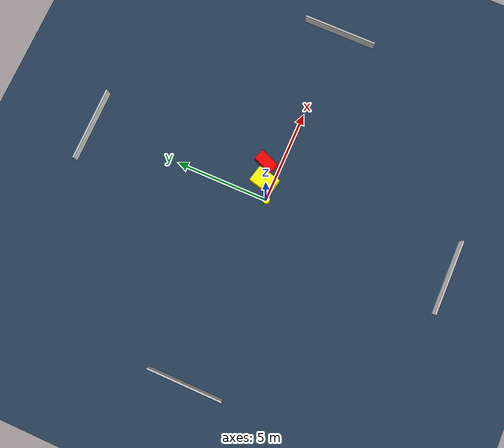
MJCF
<?xml version="1.0" ?>
<mujoco model="generated_environment">
  <option timestep="0.01" integrator="RK4" cone="elliptic"/>
  <default>
    <geom density="1"/>
  </default>
  <asset>
    <texture builtin="gradient" height="3072" name="skybox" rgb1="0.3 0.5 0.7" rgb2="0 0 0" type="skybox" width="512"/>
    <texture builtin="checker" height="300" name="groundplane" rgb1="0.2 0.3 0.4" rgb2="0.1 0.2 0.3" type="2d" width="300"/>
    <material name="groundplane" reflectance="0.2" texrepeat="5 5" texture="groundplane"/>
  </asset>
  <worldbody>
    <light dir="0 0 -1" directional="true" pos="0 0 1.5"/>
    <geom condim="3" friction="0.5 0.005 0.001" material="groundplane" name="floor" pos="0 0 0" size="0 0 0.05" type="plane"/>
    <body name="walls">
      <geom name="wall_1" condim="4" pos="-10.0 0.0 0.3" rgba="0.800000011920929 0.800000011920929 0.800000011920929 1.0" size="0.05 2.0 0.3" type="box"/>
      <geom name="wall_2" condim="4" pos="10.0 0.0 0.3" rgba="0.800000011920929 0.800000011920929 0.800000011920929 1.0" size="0.05 2.0 0.3" type="box"/>
      <geom name="wall_3" condim="4" pos="0.0 -10.0 0.3" rgba="0.800000011920929 0.800000011920929 0.800000011920929 1.0" size="2.0 0.05 0.3" type="box"/>
      <geom name="wall_4" condim="4" pos="0.0 10.0 0.3" rgba="0.800000011920929 0.800000011920929 0.800000011920929 1.0" size="2.0 0.05 0.3" type="box"/>
    </body>
    <body name="robot">
      <joint name="joint_x" type="slide" pos="0 0 0" axis="1 0 0"/>
      <joint name="joint_y" type="slide" pos="0 0 0" axis="0 1 0"/>
      <geom name="robot" type="cylinder" pos="0.0 0.0 0.2" size="0.2 0.2 0.0" mass="5.0" friction="1.0 0.005 0.0001" condim="4" rgba="1.0 1.0 0.0 1.0"/>
    </body>
    <body name="obstacle_1_movable">
      <geom name="obstacle_1_movable" condim="4" pos="0.868808216836434 0.46408676723901116 0.3" euler="0 0 346.6427276907092" friction="0.0 0.005 0.001" rgba="1.0 1.0 0.0 1.0" size="0.4541913866345234 0.6322799702064228 0.3" type="box" mass="0.1"/>
      <joint type="free"/>
    </body>
    <body name="obstacle_2_static">
      <geom name="obstacle_2_static" condim="4" pos="1.8059826772757717 0.7771486980658266 0.3" euler="0 0 247.8029271159454" friction="0.0 0.005 0.001" rgba="1.0 0.0 0.0 1.0" size="0.5435877954653727 0.30491621319956497 0.3" type="box"/>
    </body>
  </worldbody>
  <actuator>
    <motor name="actuator_x" joint="joint_x" gear="1" ctrlrange="-1 1"/>
    <motor name="actuator_y" joint="joint_y" gear="1" ctrlrange="-1 1"/>
  </actuator>
</mujoco>
